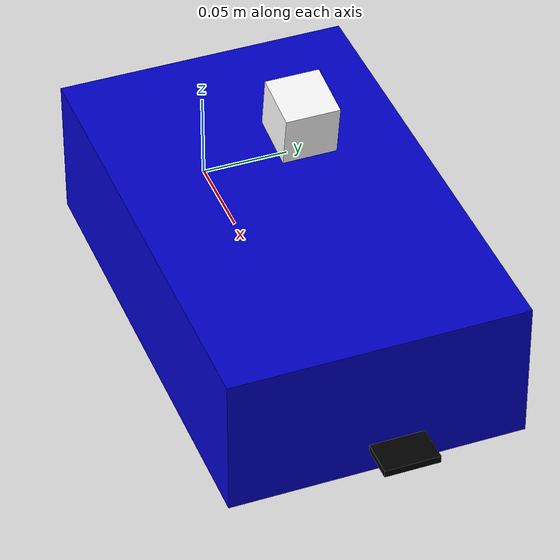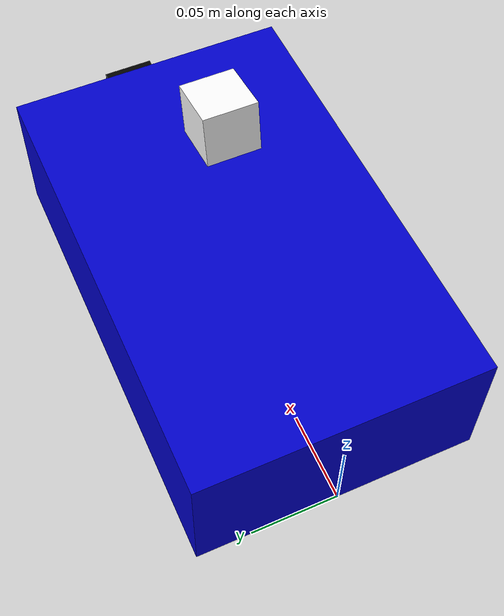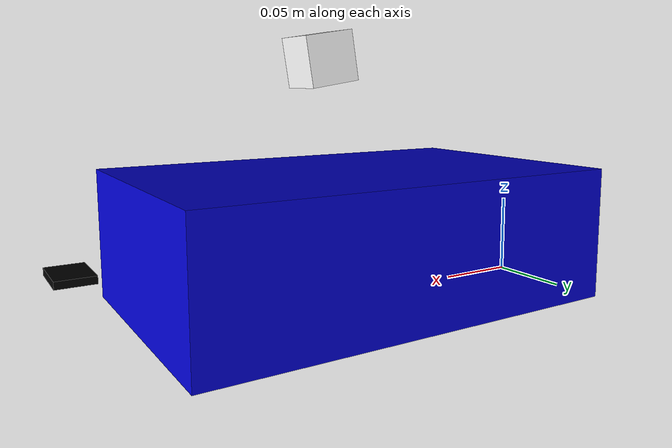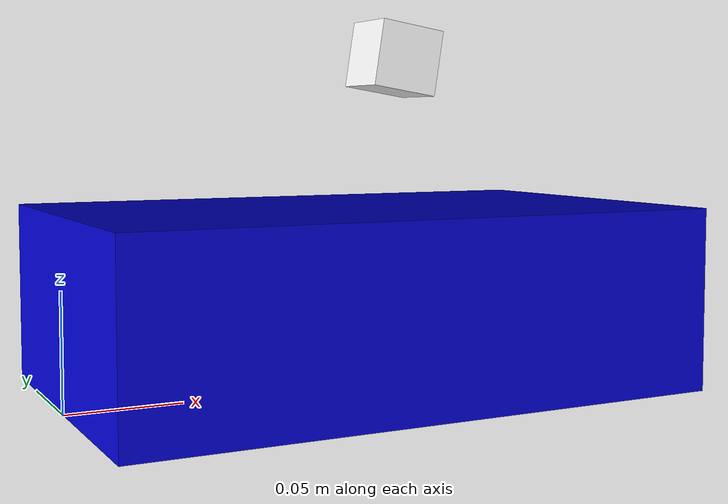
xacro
<?xml version="1.0"?>
<robot name="ghost_car" xmlns:xacro="http://ros.org/wiki/xacro">

<xacro:property name="pi" value="3.1415926536" />

<!-- Car Dimensions -->
<xacro:property name="wheelbase" value="0.260" />
<xacro:property name="track_width" value="0.162" />
<xacro:property name="car_height" value="0.08" />

<!-- Colours -->
<material name="blue">
    <color rgba="0 0 0.8 1"/>
</material>
<material name="black">
  <color rgba="0 0 0 1"/>
</material>
<material name="white">
  <color rgba="1 1 1 1"/>
</material>

<!-- Main body -->
<link name="base_footprint">
    <visual>
      <geometry>
        <box size="${wheelbase} ${track_width} ${car_height}"/>
      </geometry>
      <origin rpy="0 0 0" xyz="${0.5*wheelbase} 0 ${0.5*car_height}"/>
      <material name="blue"/>
    </visual>
</link>

<!-- Centre of Gravity -->
<link name="cog"/>
<joint name="cog_joint" type="fixed">
  <origin xyz="${0.5*wheelbase} 0 ${0.5*car_height}" rpy="0 0 0" />
  <parent link="base_footprint"/>
  <child link="cog" />
</joint>

<!-- IMU -->
<!-- Origin is at the centre of board -->
<xacro:property name="imu_length" value="0.02" />
<xacro:property name="imu_width" value="0.03" />
<xacro:property name="imu_height" value="0.004" />
<xacro:property name="imu_x" value="${wheelbase + 0.032}" />
<xacro:property name="imu_y" value="0.0" />
<xacro:property name="imu_z" value="0.038" />
<xacro:property name="imu_yaw" value="0.0" />

<link name="imu">
  <visual>
    <geometry>
      <box size="${imu_length} ${imu_width} ${imu_height}"/>
    </geometry>
    <origin rpy="0 0 0" xyz="0 0 0"/>
    <material name="black"/>
  </visual>
</link>
<joint name="imu_mount" type="fixed">
  <parent link="base_footprint"/>
  <child link="imu"/>
  <origin rpy="0 0 ${imu_yaw}" xyz="${imu_x} ${imu_y} ${imu_z}"/>
</joint>

<!-- Camera -->
<xacro:property name="camera_length" value="0.030" />
<xacro:property name="camera_width" value="0.029" />
<xacro:property name="camera_height" value="0.029" />
<xacro:property name="camera_x" value="0.15" />
<xacro:property name="camera_y" value="0" />
<xacro:property name="camera_z" value="0.1452" />
<xacro:property name="camera_pitch" value="${9.00*pi/180.0}" />

<link name="camera">
  <visual>
    <geometry>
      <box size="${camera_length} ${camera_width} ${camera_height}"/>
    </geometry>
    <origin rpy="0 0 0" xyz="0 0 0"/>
    <material name="white"/>
  </visual>
</link>
<joint name="camera_mount" type="fixed">
  <parent link="base_footprint"/>
  <child link="camera"/>
  <origin rpy="0 ${camera_pitch} 0" xyz="${camera_x} ${camera_y} ${camera_z}"/>
</joint>

<!-- Scanner from camera -->
<!-- Origin is on the ground plane directly below the camera -->
<link name="camera_ground">
</link>
<joint name="camera_ground_origin" type="fixed">
  <parent link="camera"/>
  <child link="camera_ground"/>
  <origin rpy="0 ${-camera_pitch} 0" xyz="0 0 ${-camera_z}"/>
</joint>

</robot>
